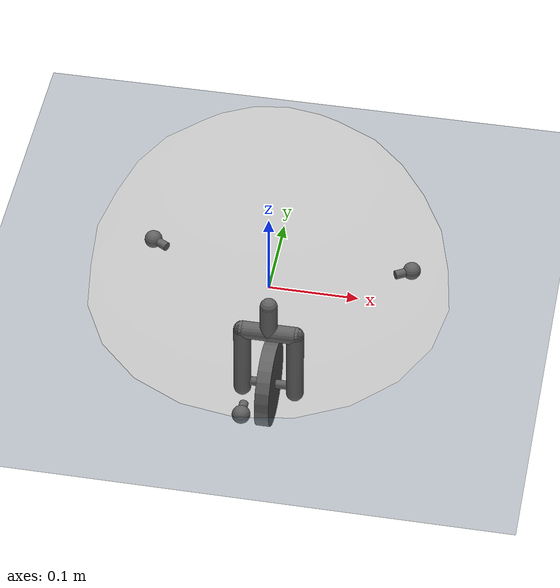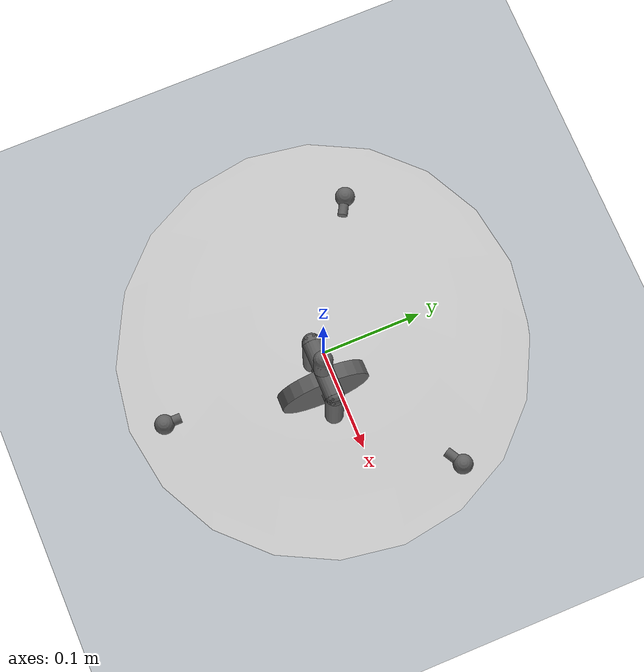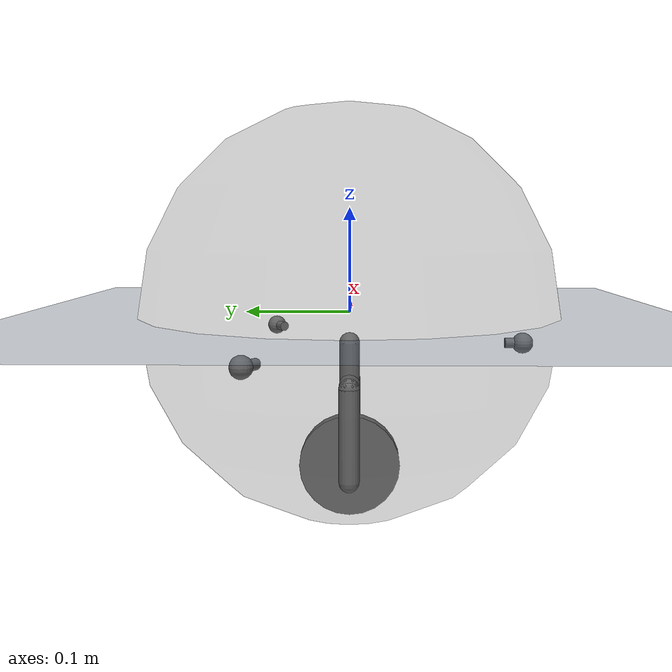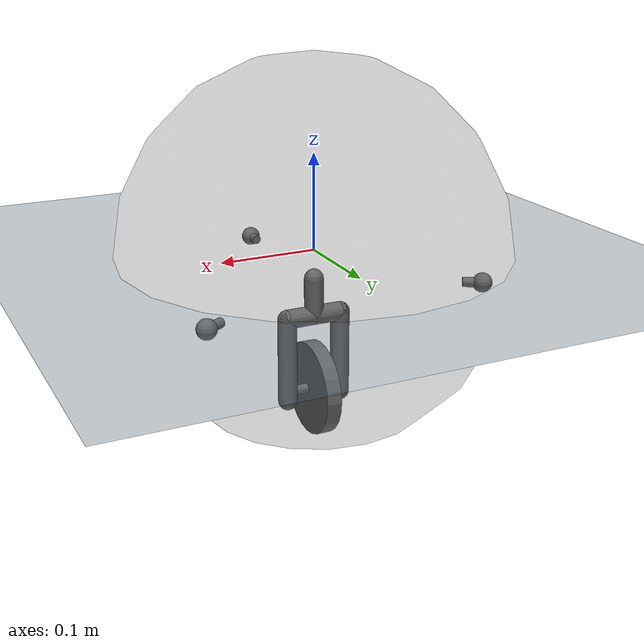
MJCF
<?xml version="1.0"?>
<mujoco model="sphere_robot">
    <compiler inertiafromgeom="true" angle="degree"/>
    <option integrator="RK4"/>
    <option timestep="0.005" iterations="50" solver="Newton" tolerance="1e-10"/>
    <size njmax="1500" nconmax="5000" nstack="5000000"/>

    <asset>
        <texture type="skybox" builtin="gradient" rgb1="0.3 0.5 0.7" rgb2="0 0 0" width="512" height="512"/>

        <texture name="texplane" type="2d" builtin="checker" rgb1=".2 .3 .4" rgb2=".1 0.15 0.2" width="512" height="512" mark="cross" markrgb=".8 .8 .8"/>

        <texture name="texgeom" type="cube" builtin="flat" mark="cross" width="127" height="1278"
            rgb1="0.8 0.6 0.4" rgb2="0.8 0.6 0.4" markrgb="1 1 1" random="0.01"/>

        <material name="matplane" reflectance="0.3" texture="texplane" texrepeat="1 1" texuniform="true"/>

        <material name="matgeom" texture="texgeom" texuniform="true" rgba="0.8 0.6 .4 1"/>
    </asset>

    <visual>
        <map force="0.1" zfar="30"/>
        <rgba haze="0.15 0.25 0.35 1"/>
        <quality shadowsize="2048"/>
        <global offwidth="800" offheight="800"/>
    </visual>

    <worldbody>
        <geom name="floor" pos="0 0 0" size="0 0 .25" type="plane" material="matplane" condim="3"/>

        <light pos="0 0 6"/>
        <light directional="false" diffuse=".2 .2 .2" specular="0 0 0" pos="0 0 5" dir="0 0 -1" castshadow="false"/>

        <body name="root" pos="0 0 0">
            <freejoint/>
            <geom name="sphere_shell" type="sphere" pos="0 0 0" size=".2 .19" rgba=".0 .0 .0 .2" mass="1" group="1"/>

            <body>
                <joint name="shell" type="ball"/>
                <geom name="bearing1" pos="0      -0.167 -0.03" size="0.01" mass="0.9"/>
                <geom name="line1" type="cylinder" fromto="0       -0.15 -0.03    0     -0.167 -0.03" size="0.005"/>

                <geom name="bearing2" pos="0.1472  0.085 -0.03" size="0.01" mass="0.9"/>
                <geom name="line2" type="cylinder" fromto="0.1299  0.075 -0.03    0.1472 0.085 -0.03" size="0.005"/>

                <geom name="bearing3" pos="-0.1472 0.085 -0.03" size="0.01" mass="0.9"/>
                <geom name="line3" type="cylinder" fromto="-0.1299 0.075 -0.03   -0.1472 0.085 -0.03" size="0.005"/>

                <body>
                    <geom name="platform" type="cylinder" pos="0 0 -0.03" size=".15 .005" rgba=".0 .0 .3 .5" mass="3" group="1"/>
                </body>

                <body>
                    <joint name="platform_with_fork" type="hinge" axis="0 0 1"/>

                    <geom name="fork0" type="capsule" fromto="0 0 -0.03  0 0 -0.07" size="0.01" mass="0.1" group="0.01"/>
                    <geom name="link_f1_f2" type="capsule" fromto="-0.03 0 -0.07   0.03 0 -0.07" size="0.01" mass="0.001" group="1"/>
                    <geom name="fork1" type="capsule" fromto="-0.03 0 -0.07  -0.03 0 -0.16" size="0.01" mass="0.01" group="1"/>
                    <geom name="fork2" type="capsule" fromto="0.03 0 -0.07  0.03 0 -0.16" size="0.01" mass="0.01" group="1"/>
                    <geom name="wheel_axis" type="cylinder" fromto="-0.03 0 -0.15  0.03 0 -0.15" size="0.005"/>

                     <body name="wheel">
                        <joint name="wheel_motor" type="hinge" axis="1 0 0"/>
                        <geom name="wheel_" type="cylinder" fromto="-0.008 0 -0.15  0.008 0 -0.15" size="0.049 0.005"/>
                     </body>

                </body>
            </body>
        </body>

    </worldbody>

    <equality>
        <connect anchor="0 0 2" body1="root" body2="wheel" name="equality_constraint"/>
    </equality>

    <actuator>
        <motor name="platform_with_fork" gear="5" joint="platform_with_fork"/>
        <motor name="wheel_motor" gear="5" joint="wheel_motor"/>
    </actuator>
</mujoco>
